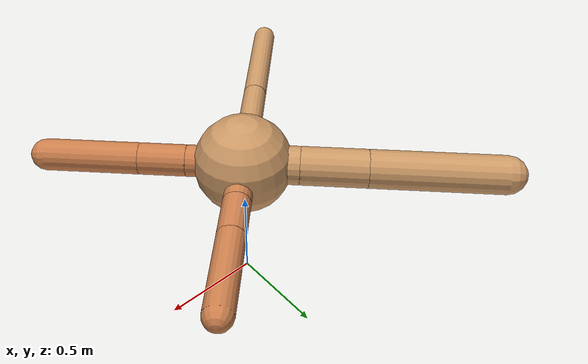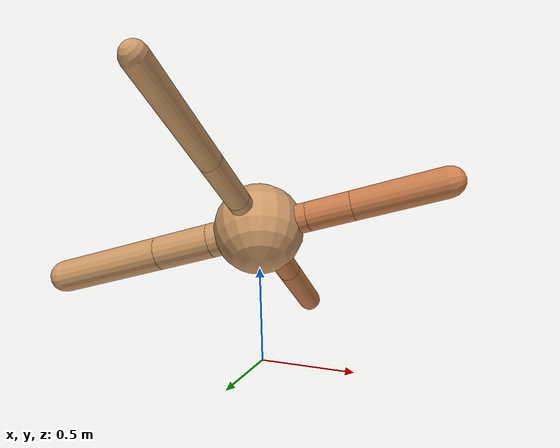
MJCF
<?xml version="1.0" ?>
<mujoco model="ant">

	<compiler angle="degree" coordinate="local" inertiafromgeom="true"/>

	<option integrator="RK4" timestep="0.01"/>

	<custom>

		<numeric data="0.0 0.0 0.55 1.0 0.0 0.0 0.0 0.0 1.0 0.0 -1.0 0.0 -1.0 0.0 1.0" name="init_qpos"/>

	</custom>

	<default>

		<joint armature="1" damping="1" limited="true"/>

		<geom conaffinity="0" condim="3" density="5.0" friction="1.5 0.1 0.1" margin="0.01" rgba="0.8 0.6 0.4 1"/>

	</default>

	<worldbody>

		<body name="torso" pos="0 0 0.75">

			<geom name="torso_geom" pos="0 0 0" size="0.2476335792685186" type="sphere"/>

			<!--joint armature="0" damping="0" limited="false" margin="0.01" name="root" pos="0 0 0" type="free"/-->

			<body name="front_left_leg" pos="0 0 0">

				<geom fromto="0 0 0 0.2 0.2 0" name="aux_1_geom" size="0.06887553541683691" type="capsule" rgba=".8 .5 .3 1"/>

				<body name="aux_1" pos="0.2 0.2 0">

					<joint axis="0 0 1" name="hip_1" pos="0.0 0.0 0.0" range="-40 40" type="hinge"/>

					<geom fromto="0 0 0 0.15243063845679292 0.15243063845679292 0" name="left_leg_geom" size="0.06887553541683691" type="capsule" rgba=".8 .5 .3 1"/>

					<body pos="0.15243063845679292 0.15243063845679292 0" name="front_left_foot">

						<joint axis="-1 1 0" name="ankle_1" pos="0.0 0.0 0.0" range="30 100" type="hinge"/>

						<geom fromto="0 0 0 0.30486127691358583 0.30486127691358583 0" name="left_ankle_geom" size="0.06887553541683691" type="capsule" rgba=".8 .5 .3 1"/>

					</body>

				</body>

			</body>

			<body name="front_right_leg" pos="0 0 0">

				<geom fromto="0 0 0 -0.2 0.2 0" name="aux_2_geom" size="0.09742472772309205" type="capsule"/>

				<body name="aux_2" pos="-0.2 0.2 0">

					<joint axis="0 0 1" name="hip_2" pos="0.0 0.0 0.0" range="-40 40" type="hinge"/>

					<geom fromto="0 0 0 -0.23785655628453287 0.23785655628453287 0" name="right_leg_geom" size="0.09742472772309205" type="capsule"/>

					<body pos="-0.23785655628453287 0.23785655628453287 0" name="front_right_foot">

						<joint axis="1 1 0" name="ankle_2" pos="0.0 0.0 0.0" range="-100 -30" type="hinge"/>

						<geom fromto="0 0 0 -0.47571311256906573 0.47571311256906573 0" name="right_ankle_geom" size="0.09742472772309205" type="capsule"/>

					</body>

				</body>

			</body>

			<body name="left_back_leg" pos="0 0 0">

				<geom fromto="0 0 0 -0.2 -0.2 0" name="aux_3_geom" size="0.062293837826084116" type="capsule"/>

				<body name="aux_3" pos="-0.2 -0.2 0">

					<joint axis="0 0 1" name="hip_3" pos="0.0 0.0 0.0" range="-40 40" type="hinge"/>

					<geom fromto="0 0 0 -0.22810901014115792 -0.22810901014115792 0" name="back_leg_geom" size="0.062293837826084116" type="capsule"/>

					<body pos="-0.22810901014115792 -0.22810901014115792 0" name="left_back_foot">

						<joint axis="-1 1 0" name="ankle_3" pos="0.0 0.0 0.0" range="-100 -30" type="hinge"/>

						<geom fromto="0 0 0 -0.45621802028231584 -0.45621802028231584 0" name="third_ankle_geom" size="0.062293837826084116" type="capsule"/>

					</body>

				</body>

			</body>

			<body name="right_back_leg" pos="0 0 0">

				<geom fromto="0 0 0 0.2 -0.2 0" name="aux_4_geom" size="0.07993686168505755" type="capsule" rgba=".8 .5 .3 1"/>

				<body name="aux_4" pos="0.2 -0.2 0">

					<joint axis="0 0 1" name="hip_4" pos="0.0 0.0 0.0" range="-40 40" type="hinge"/>

					<geom fromto="0 0 0 0.16719812916510968 -0.16719812916510968 0" name="rightback_leg_geom" size="0.07993686168505755" type="capsule" rgba=".8 .5 .3 1"/>

					<body pos="0.16719812916510968 -0.16719812916510968 0" name="right_back_foot">

						<joint axis="1 1 0" name="ankle_4" pos="0.0 0.0 0.0" range="30 100" type="hinge"/>

						<geom fromto="0 0 0 0.33439625833021935 -0.33439625833021935 0" name="fourth_ankle_geom" size="0.07993686168505755" type="capsule" rgba=".8 .5 .3 1"/>

					</body>

				</body>

			</body>

		</body>

	</worldbody>

	<actuator>

		<motor ctrllimited="true" ctrlrange="-1.0 1.0" joint="hip_4" gear="150"/>

		<motor ctrllimited="true" ctrlrange="-1.0 1.0" joint="ankle_4" gear="150"/>

		<motor ctrllimited="true" ctrlrange="-1.0 1.0" joint="hip_1" gear="150"/>

		<motor ctrllimited="true" ctrlrange="-1.0 1.0" joint="ankle_1" gear="150"/>

		<motor ctrllimited="true" ctrlrange="-1.0 1.0" joint="hip_2" gear="150"/>

		<motor ctrllimited="true" ctrlrange="-1.0 1.0" joint="ankle_2" gear="150"/>

		<motor ctrllimited="true" ctrlrange="-1.0 1.0" joint="hip_3" gear="150"/>

		<motor ctrllimited="true" ctrlrange="-1.0 1.0" joint="ankle_3" gear="150"/>

	</actuator>

</mujoco>
